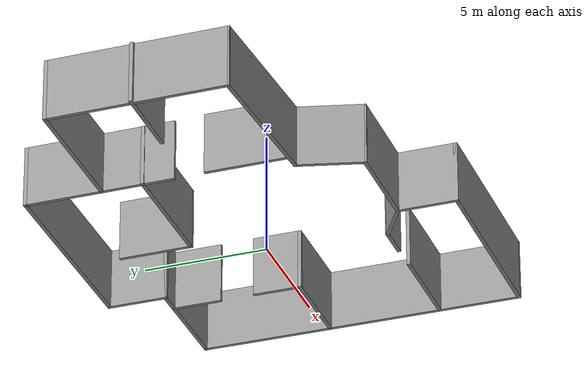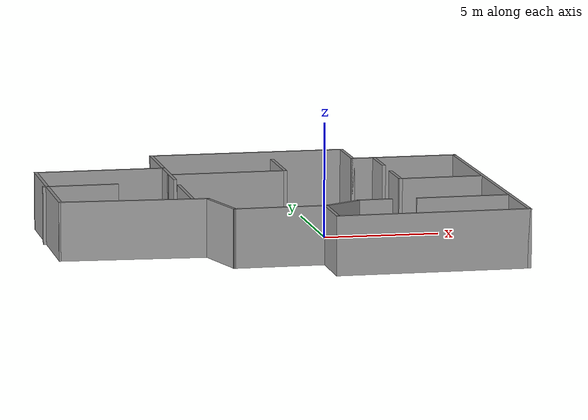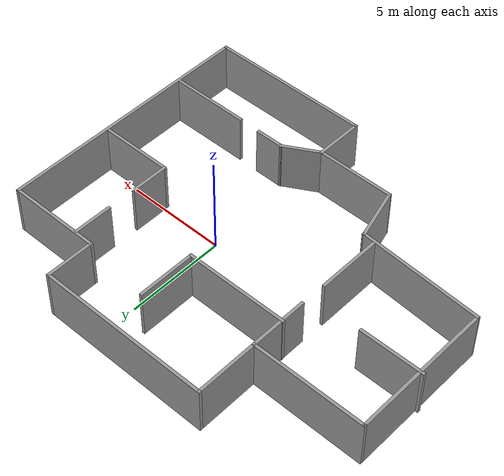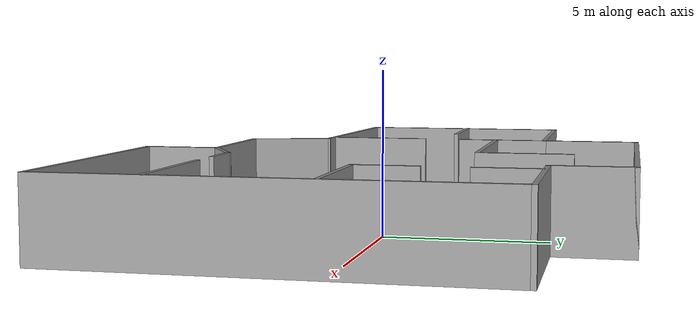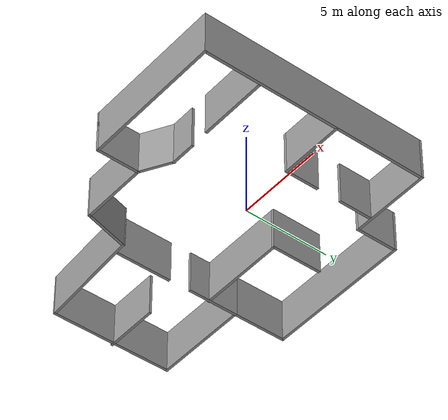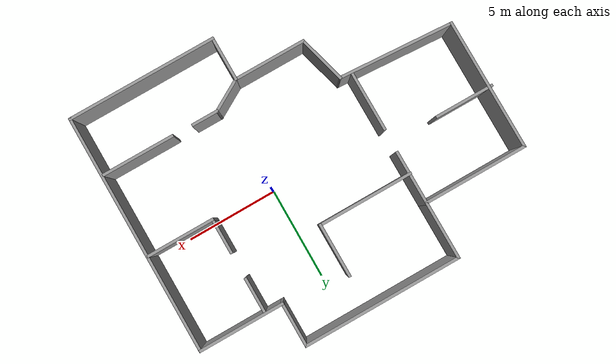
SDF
<?xml version='1.0'?>
<sdf version='1.6'>
  <model name='floor3'>
    <pose frame=''>-2.52438 -0.300177 0 0 -0 0</pose>
    <link name='Wall_0'>
      <collision name='Wall_0_Collision'>
        <geometry>
          <box>
            <size>2.75 0.15 2.5</size>
          </box>
        </geometry>
        <pose frame=''>0 0 1.25 0 -0 0</pose>
      </collision>
      <visual name='Wall_0_Visual'>
        <pose frame=''>0 0 1.25 0 -0 0</pose>
        <geometry>
          <box>
            <size>2.75 0.15 2.5</size>
          </box>
        </geometry>
        <material>
          <script>
            <uri>file://media/materials/scripts/gazebo.material</uri>
            <name>Gazebo/Grey</name>
          </script>
          <ambient>1 1 1 1</ambient>
        </material>
        <meta>
          <layer>0</layer>
        </meta>
      </visual>
      <pose frame=''>-2.82199 -4.1193 0 0 0 -1.309</pose>
    </link>
    <link name='Wall_1'>
      <collision name='Wall_1_Collision'>
        <geometry>
          <box>
            <size>4 0.15 2.5</size>
          </box>
        </geometry>
        <pose frame=''>0 0 1.25 0 -0 0</pose>
      </collision>
      <visual name='Wall_1_Visual'>
        <pose frame=''>0 0 1.25 0 -0 0</pose>
        <geometry>
          <box>
            <size>4 0.15 2.5</size>
          </box>
        </geometry>
        <material>
          <script>
            <uri>file://media/materials/scripts/gazebo.material</uri>
            <name>Gazebo/Grey</name>
          </script>
          <ambient>1 1 1 1</ambient>
        </material>
        <meta>
          <layer>0</layer>
        </meta>
      </visual>
      <pose frame=''>-0.560523 -5.375 0 0 -0 0</pose>
    </link>
    <link name='Wall_10'>
      <collision name='Wall_10_Collision'>
        <geometry>
          <box>
            <size>7.25 0.15 2.5</size>
          </box>
        </geometry>
        <pose frame=''>0 0 1.25 0 -0 0</pose>
      </collision>
      <visual name='Wall_10_Visual'>
        <pose frame=''>0 0 1.25 0 -0 0</pose>
        <geometry>
          <box>
            <size>7.25 0.15 2.5</size>
          </box>
        </geometry>
        <material>
          <script>
            <uri>file://media/materials/scripts/gazebo.material</uri>
            <name>Gazebo/Grey</name>
          </script>
          <ambient>1 1 1 1</ambient>
        </material>
        <meta>
          <layer>0</layer>
        </meta>
      </visual>
      <pose frame=''>-9.33552 1.075 0 0 0 -1.5708</pose>
    </link>
    <link name='Wall_11'>
      <collision name='Wall_11_Collision'>
        <geometry>
          <box>
            <size>6.33928 0.15 2.5</size>
          </box>
        </geometry>
        <pose frame=''>0 0 1.25 0 -0 0</pose>
      </collision>
      <visual name='Wall_11_Visual'>
        <pose frame=''>0 0 1.25 0 -0 0</pose>
        <geometry>
          <box>
            <size>6.33928 0.15 2.5</size>
          </box>
        </geometry>
        <material>
          <script>
            <uri>file://media/materials/scripts/gazebo.material</uri>
            <name>Gazebo/Grey</name>
          </script>
          <ambient>1 1 1 1</ambient>
        </material>
        <meta>
          <layer>0</layer>
        </meta>
      </visual>
      <pose frame=''>-6.24699 -2.6693 0 0 0 -0.062826</pose>
    </link>
    <link name='Wall_13'>
      <collision name='Wall_13_Collision'>
        <geometry>
          <box>
            <size>3.75 0.15 2.5</size>
          </box>
        </geometry>
        <pose frame=''>0 0 1.25 0 -0 0</pose>
      </collision>
      <visual name='Wall_13_Visual'>
        <pose frame=''>0 0 1.25 0 -0 0</pose>
        <geometry>
          <box>
            <size>3.75 0.15 2.5</size>
          </box>
        </geometry>
        <material>
          <script>
            <uri>file://media/materials/scripts/gazebo.material</uri>
            <name>Gazebo/Grey</name>
          </script>
          <ambient>1 1 1 1</ambient>
        </material>
        <meta>
          <layer>0</layer>
        </meta>
      </visual>
      <pose frame=''>7.6002 0.09579 0 0 -0 3.14159</pose>
    </link>
    <link name='Wall_14'>
      <collision name='Wall_14_Collision'>
        <geometry>
          <box>
            <size>2 0.15 2.5</size>
          </box>
        </geometry>
        <pose frame=''>0 0 1.25 0 -0 0</pose>
      </collision>
      <visual name='Wall_14_Visual'>
        <pose frame=''>0 0 1.25 0 -0 0</pose>
        <geometry>
          <box>
            <size>2 0.15 2.5</size>
          </box>
        </geometry>
        <material>
          <script>
            <uri>file://media/materials/scripts/gazebo.material</uri>
            <name>Gazebo/Grey</name>
          </script>
          <ambient>1 1 1 1</ambient>
        </material>
        <meta>
          <layer>0</layer>
        </meta>
      </visual>
      <pose frame=''>5.80021 1.02079 0 0 -0 1.5708</pose>
    </link>
    <link name='Wall_17'>
      <collision name='Wall_17_Collision'>
        <geometry>
          <box>
            <size>2 0.15 2.5</size>
          </box>
        </geometry>
        <pose frame=''>0 0 1.25 0 -0 0</pose>
      </collision>
      <visual name='Wall_17_Visual'>
        <pose frame=''>0 0 1.25 0 -0 0</pose>
        <geometry>
          <box>
            <size>2 0.15 2.5</size>
          </box>
        </geometry>
        <material>
          <script>
            <uri>file://media/materials/scripts/gazebo.material</uri>
            <name>Gazebo/Grey</name>
          </script>
          <ambient>1 1 1 1</ambient>
        </material>
        <meta>
          <layer>0</layer>
        </meta>
      </visual>
      <pose frame=''>5.82112 4.37601 0 0 0 -1.5708</pose>
    </link>
    <link name='Wall_19'>
      <collision name='Wall_19_Collision'>
        <geometry>
          <box>
            <size>2 0.15 2.5</size>
          </box>
        </geometry>
        <pose frame=''>0 0 1.25 0 -0 0</pose>
      </collision>
      <visual name='Wall_19_Visual'>
        <pose frame=''>0 0 1.25 0 -0 0</pose>
        <geometry>
          <box>
            <size>2 0.15 2.5</size>
          </box>
        </geometry>
        <material>
          <script>
            <uri>file://media/materials/scripts/gazebo.material</uri>
            <name>Gazebo/Grey</name>
          </script>
          <ambient>1 1 1 1</ambient>
        </material>
        <meta>
          <layer>0</layer>
        </meta>
      </visual>
      <pose frame=''>2.16555 -4.9125 0 0 -0 0.523599</pose>
    </link>
    <link name='Wall_2'>
      <collision name='Wall_2_Collision'>
        <geometry>
          <box>
            <size>2.5 0.15 2.5</size>
          </box>
        </geometry>
        <pose frame=''>0 0 1.25 0 -0 0</pose>
      </collision>
      <visual name='Wall_2_Visual'>
        <pose frame=''>0 0 1.25 0 -0 0</pose>
        <geometry>
          <box>
            <size>2.5 0.15 2.5</size>
          </box>
        </geometry>
        <material>
          <script>
            <uri>file://media/materials/scripts/gazebo.material</uri>
            <name>Gazebo/Grey</name>
          </script>
          <ambient>1 1 1 1</ambient>
        </material>
        <meta>
          <layer>0</layer>
        </meta>
      </visual>
      <pose frame=''>1.36448 -6.55 0 0 0 -1.5708</pose>
    </link>
    <link name='Wall_20'>
      <collision name='Wall_20_Collision'>
        <geometry>
          <box>
            <size>1.5 0.15 2.5</size>
          </box>
        </geometry>
        <pose frame=''>0 0 1.25 0 -0 0</pose>
      </collision>
      <visual name='Wall_20_Visual'>
        <pose frame=''>0 0 1.25 0 -0 0</pose>
        <geometry>
          <box>
            <size>1.5 0.15 2.5</size>
          </box>
        </geometry>
        <material>
          <script>
            <uri>file://media/materials/scripts/gazebo.material</uri>
            <name>Gazebo/Grey</name>
          </script>
          <ambient>1 1 1 1</ambient>
        </material>
        <meta>
          <layer>0</layer>
        </meta>
      </visual>
      <pose frame=''>3.64162 -4.45 0 0 -0 0</pose>
    </link>
    <link name='Wall_22'>
      <collision name='Wall_22_Collision'>
        <geometry>
          <box>
            <size>4 0.15 2.5</size>
          </box>
        </geometry>
        <pose frame=''>0 0 1.25 0 -0 0</pose>
      </collision>
      <visual name='Wall_22_Visual'>
        <pose frame=''>0 0 1.25 0 -0 0</pose>
        <geometry>
          <box>
            <size>4 0.15 2.5</size>
          </box>
        </geometry>
        <material>
          <script>
            <uri>file://media/materials/scripts/gazebo.material</uri>
            <name>Gazebo/Grey</name>
          </script>
          <ambient>1 1 1 1</ambient>
        </material>
        <meta>
          <layer>0</layer>
        </meta>
      </visual>
      <pose frame=''>7.43067 -4.4794 0 0 -0 0</pose>
    </link>
    <link name='Wall_24'>
      <collision name='Wall_24_Collision'>
        <geometry>
          <box>
            <size>3 0.15 2.5</size>
          </box>
        </geometry>
        <pose frame=''>0 0 1.25 0 -0 0</pose>
      </collision>
      <visual name='Wall_24_Visual'>
        <pose frame=''>0 0 1.25 0 -0 0</pose>
        <geometry>
          <box>
            <size>3 0.15 2.5</size>
          </box>
        </geometry>
        <material>
          <script>
            <uri>file://media/materials/scripts/gazebo.material</uri>
            <name>Gazebo/Grey</name>
          </script>
          <ambient>1 1 1 1</ambient>
        </material>
        <meta>
          <layer>0</layer>
        </meta>
      </visual>
      <pose frame=''>-3.73552 3.2 0 0 0 -1.5708</pose>
    </link>
    <link name='Wall_26'>
      <collision name='Wall_26_Collision'>
        <geometry>
          <box>
            <size>3.25 0.15 2.5</size>
          </box>
        </geometry>
        <pose frame=''>0 0 1.25 0 -0 0</pose>
      </collision>
      <visual name='Wall_26_Visual'>
        <pose frame=''>0 0 1.25 0 -0 0</pose>
        <geometry>
          <box>
            <size>3.25 0.15 2.5</size>
          </box>
        </geometry>
        <material>
          <script>
            <uri>file://media/materials/scripts/gazebo.material</uri>
            <name>Gazebo/Grey</name>
          </script>
          <ambient>1 1 1 1</ambient>
        </material>
        <meta>
          <layer>0</layer>
        </meta>
      </visual>
      <pose frame=''>-3.78216 -1.12201 0 0 0 -1.5708</pose>
    </link>
    <link name='Wall_28'>
      <collision name='Wall_28_Collision'>
        <geometry>
          <box>
            <size>5.25 0.15 2.5</size>
          </box>
        </geometry>
        <pose frame=''>0 0 1.25 0 -0 0</pose>
      </collision>
      <visual name='Wall_28_Visual'>
        <pose frame=''>0 0 1.25 0 -0 0</pose>
        <geometry>
          <box>
            <size>5.25 0.15 2.5</size>
          </box>
        </geometry>
        <material>
          <script>
            <uri>file://media/materials/scripts/gazebo.material</uri>
            <name>Gazebo/Grey</name>
          </script>
          <ambient>1 1 1 1</ambient>
        </material>
        <meta>
          <layer>0</layer>
        </meta>
      </visual>
      <pose frame=''>-1.2129 2.97673 0 0 -0 0</pose>
    </link>
    <link name='Wall_29'>
      <collision name='Wall_29_Collision'>
        <geometry>
          <box>
            <size>3 0.15 2.5</size>
          </box>
        </geometry>
        <pose frame=''>0 0 1.25 0 -0 0</pose>
      </collision>
      <visual name='Wall_29_Visual'>
        <pose frame=''>0 0 1.25 0 -0 0</pose>
        <geometry>
          <box>
            <size>3 0.15 2.5</size>
          </box>
        </geometry>
        <material>
          <script>
            <uri>file://media/materials/scripts/gazebo.material</uri>
            <name>Gazebo/Grey</name>
          </script>
          <ambient>1 1 1 1</ambient>
        </material>
        <meta>
          <layer>0</layer>
        </meta>
      </visual>
      <pose frame=''>1.3371 4.40172 0 0 -0 1.5708</pose>
    </link>
    <link name='Wall_3'>
      <collision name='Wall_3_Collision'>
        <geometry>
          <box>
            <size>8.25 0.15 2.5</size>
          </box>
        </geometry>
        <pose frame=''>0 0 1.25 0 -0 0</pose>
      </collision>
      <visual name='Wall_3_Visual'>
        <pose frame=''>0 0 1.25 0 -0 0</pose>
        <geometry>
          <box>
            <size>8.25 0.15 2.5</size>
          </box>
        </geometry>
        <material>
          <script>
            <uri>file://media/materials/scripts/gazebo.material</uri>
            <name>Gazebo/Grey</name>
          </script>
          <ambient>1 1 1 1</ambient>
        </material>
        <meta>
          <layer>0</layer>
        </meta>
      </visual>
      <pose frame=''>5.41448 -7.725 0 0 -0 0</pose>
    </link>
    <link name='Wall_31'>
      <collision name='Wall_31_Collision'>
        <geometry>
          <box>
            <size>3.25 0.15 2.5</size>
          </box>
        </geometry>
        <pose frame=''>0 0 1.25 0 -0 0</pose>
      </collision>
      <visual name='Wall_31_Visual'>
        <pose frame=''>0 0 1.25 0 -0 0</pose>
        <geometry>
          <box>
            <size>3.25 0.15 2.5</size>
          </box>
        </geometry>
        <material>
          <script>
            <uri>file://media/materials/scripts/gazebo.material</uri>
            <name>Gazebo/Grey</name>
          </script>
          <ambient>1 1 1 1</ambient>
        </material>
        <meta>
          <layer>0</layer>
        </meta>
      </visual>
      <pose frame=''>-7.91448 1.21293 0 0 -0 0</pose>
    </link>
    <link name='Wall_4'>
      <collision name='Wall_4_Collision'>
        <geometry>
          <box>
            <size>13.25 0.15 2.5</size>
          </box>
        </geometry>
        <pose frame=''>0 0 1.25 0 -0 0</pose>
      </collision>
      <visual name='Wall_4_Visual'>
        <pose frame=''>0 0 1.25 0 -0 0</pose>
        <geometry>
          <box>
            <size>13.25 0.15 2.5</size>
          </box>
        </geometry>
        <material>
          <script>
            <uri>file://media/materials/scripts/gazebo.material</uri>
            <name>Gazebo/Grey</name>
          </script>
          <ambient>1 1 1 1</ambient>
        </material>
        <meta>
          <layer>0</layer>
        </meta>
      </visual>
      <pose frame=''>9.46448 -1.175 0 0 -0 1.5708</pose>
    </link>
    <link name='Wall_5'>
      <collision name='Wall_5_Collision'>
        <geometry>
          <box>
            <size>4.75 0.15 2.5</size>
          </box>
        </geometry>
        <pose frame=''>0 0 1.25 0 -0 0</pose>
      </collision>
      <visual name='Wall_5_Visual'>
        <pose frame=''>0 0 1.25 0 -0 0</pose>
        <geometry>
          <box>
            <size>4.75 0.15 2.5</size>
          </box>
        </geometry>
        <material>
          <script>
            <uri>file://media/materials/scripts/gazebo.material</uri>
            <name>Gazebo/Grey</name>
          </script>
          <ambient>1 1 1 1</ambient>
        </material>
        <meta>
          <layer>0</layer>
        </meta>
      </visual>
      <pose frame=''>7.16448 5.375 0 0 -0 3.14159</pose>
    </link>
    <link name='Wall_6'>
      <collision name='Wall_6_Collision'>
        <geometry>
          <box>
            <size>2.5 0.15 2.5</size>
          </box>
        </geometry>
        <pose frame=''>0 0 1.25 0 -0 0</pose>
      </collision>
      <visual name='Wall_6_Visual'>
        <pose frame=''>0 0 1.25 0 -0 0</pose>
        <geometry>
          <box>
            <size>2.5 0.15 2.5</size>
          </box>
        </geometry>
        <material>
          <script>
            <uri>file://media/materials/scripts/gazebo.material</uri>
            <name>Gazebo/Grey</name>
          </script>
          <ambient>1 1 1 1</ambient>
        </material>
        <meta>
          <layer>0</layer>
        </meta>
      </visual>
      <pose frame=''>4.86448 6.55 0 0 -0 1.5708</pose>
    </link>
    <link name='Wall_7'>
      <collision name='Wall_7_Collision'>
        <geometry>
          <box>
            <size>8.75 0.15 2.5</size>
          </box>
        </geometry>
        <pose frame=''>0 0 1.25 0 -0 0</pose>
      </collision>
      <visual name='Wall_7_Visual'>
        <pose frame=''>0 0 1.25 0 -0 0</pose>
        <geometry>
          <box>
            <size>8.75 0.15 2.5</size>
          </box>
        </geometry>
        <material>
          <script>
            <uri>file://media/materials/scripts/gazebo.material</uri>
            <name>Gazebo/Grey</name>
          </script>
          <ambient>1 1 1 1</ambient>
        </material>
        <meta>
          <layer>0</layer>
        </meta>
      </visual>
      <pose frame=''>0.564477 7.725 0 0 -0 3.14159</pose>
    </link>
    <link name='Wall_8'>
      <collision name='Wall_8_Collision'>
        <geometry>
          <box>
            <size>3.25 0.15 2.5</size>
          </box>
        </geometry>
        <pose frame=''>0 0 1.25 0 -0 0</pose>
      </collision>
      <visual name='Wall_8_Visual'>
        <pose frame=''>0 0 1.25 0 -0 0</pose>
        <geometry>
          <box>
            <size>3.25 0.15 2.5</size>
          </box>
        </geometry>
        <material>
          <script>
            <uri>file://media/materials/scripts/gazebo.material</uri>
            <name>Gazebo/Grey</name>
          </script>
          <ambient>1 1 1 1</ambient>
        </material>
        <meta>
          <layer>0</layer>
        </meta>
      </visual>
      <pose frame=''>-3.73552 6.175 0 0 0 -1.5708</pose>
    </link>
    <link name='Wall_9'>
      <collision name='Wall_9_Collision'>
        <geometry>
          <box>
            <size>5.75 0.15 2.5</size>
          </box>
        </geometry>
        <pose frame=''>0 0 1.25 0 -0 0</pose>
      </collision>
      <visual name='Wall_9_Visual'>
        <pose frame=''>0 0 1.25 0 -0 0</pose>
        <geometry>
          <box>
            <size>5.75 0.15 2.5</size>
          </box>
        </geometry>
        <material>
          <script>
            <uri>file://media/materials/scripts/gazebo.material</uri>
            <name>Gazebo/Grey</name>
          </script>
          <ambient>1 1 1 1</ambient>
        </material>
        <meta>
          <layer>0</layer>
        </meta>
      </visual>
      <pose frame=''>-6.53552 4.625 0 0 -0 3.14159</pose>
    </link>
    <static>1</static>
  </model>
</sdf>
